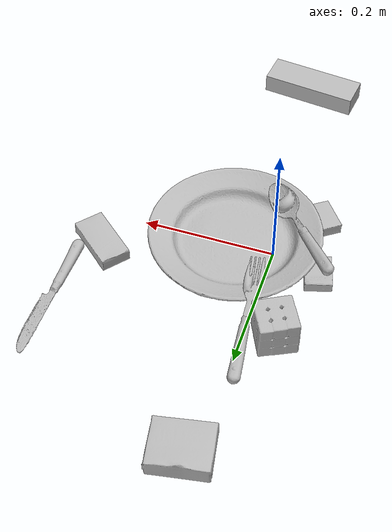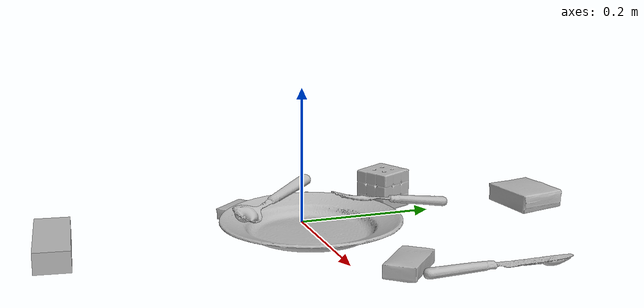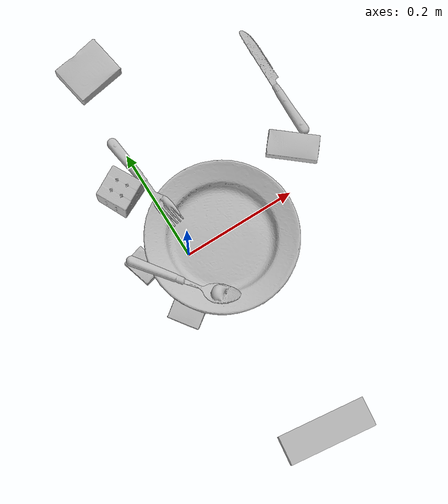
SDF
<sdf version="1.4">
  <world name="default">
    <light name="light1" type="point">
      <pose>0 0 1 0 0 0</pose>
      <diffuse>3 3 3 1</diffuse>
      <specular>3 3 3 1</specular>
    </light>
    <light name="light2" type="point">
      <pose>0 0.5 2 0 0 0</pose>
      <diffuse>1 1 1 1</diffuse>
      <specular>1 1 1 1</specular>
    </light>
    <light name="light3" type="point">
      <pose>0 0.5 2 0 0 0</pose>
      <diffuse>3 3 3 1</diffuse>
      <specular>3 3 3 1</specular>
    </light>
    <scene>
      <ambient>0.7 0.7 0.7</ambient>
    </scene>
    <model name="box11">
      <link name="link_box11">
        <collision name="default">
          <geometry>
            <mesh>
              <uri>model://pudding_box/collision_meshes/collision.obj</uri>
              <scale>0.5 0.5 0.5</scale>
            </mesh>
          </geometry>
          <surface>
            <friction>
              <ode>
                <mu>0.5</mu>
                <mu2>0.5</mu2>
              </ode>
            </friction>
          <contact>
        <ode>
            <max_vel>0</max_vel>
            <min_depth>0.0001</min_depth>
            <kp>1e8</kp>
        </ode>
    </contact></surface>
        </collision>
        <visual name="default">
          <geometry>
            <mesh>
              <uri>model://pudding_box/visual_meshes/visual.dae</uri>
              <scale>0.5 0.5 0.5</scale>
            </mesh>
          </geometry>
        </visual>
        <inertial>
          <mass>0.03786866366863251</mass>
          <pose>0.00024474109522998333 0.00040339428232982755 -0.0002594413817860186 0.005213102272185547 -0.006603797326323335 0.020079825161634604</pose>
          <inertia>
            <ixx>1.0702144e-05</ixx>
            <iyy>7.2004777e-06</iyy>
            <izz>1.580451e-05</izz>
            <ixy>0</ixy>
            <ixz>0</ixz>
            <iyz>0</iyz>
          </inertia>
        </inertial>
      </link>
      <pose>-0.051698893308639526 -0.08091425150632858 0.00986290443688631 0.022348776902968187 -0.011391515336631138 0.6364617600883297</pose>
    </model>
    <model name="box12">
      <link name="link_box12">
        <collision name="default">
          <geometry>
            <mesh>
              <uri>model://gelatin_box/collision_meshes/collision.obj</uri>
              <scale>1.0 1.0 1.0</scale>
            </mesh>
          </geometry>
          <surface>
            <friction>
              <ode>
                <mu>0.5</mu>
                <mu2>0.5</mu2>
              </ode>
            </friction>
          <contact>
        <ode>
            <max_vel>0</max_vel>
            <min_depth>0.0001</min_depth>
            <kp>1e8</kp>
        </ode>
    </contact></surface>
        </collision>
        <visual name="default">
          <geometry>
            <mesh>
              <uri>model://gelatin_box/visual_meshes/visual.dae</uri>
              <scale>1.0 1.0 1.0</scale>
            </mesh>
          </geometry>
        </visual>
        <inertial>
          <mass>0.12588495016098022</mass>
          <pose>0.0004319618456065655 0.00011156871914863586 -0.0003640321083366871 -0.0010503723379331838 -0.004755819617810625 0.016440561335826234</pose>
          <inertia>
            <ixx>8.886451e-05</ixx>
            <iyy>6.3475454e-05</iyy>
            <izz>0.00013527159</izz>
            <ixy>0</ixy>
            <ixz>0</ixz>
            <iyz>0</iyz>
          </inertia>
        </inertial>
      </link>
      <pose>0.02062504179775715 0.3567647337913513 0.015168310143053532 0.005596546198799147 -0.007303593435218317 1.739368775423702</pose>
    </model>
    <model name="box13">
      <link name="link_box13">
        <collision name="default">
          <geometry>
            <mesh>
              <uri>model://rubiks_cube/collision_meshes/collision.obj</uri>
              <scale>1.0 1.0 1.0</scale>
            </mesh>
          </geometry>
          <surface>
            <friction>
              <ode>
                <mu>0.5</mu>
                <mu2>0.5</mu2>
              </ode>
            </friction>
          <contact>
        <ode>
            <max_vel>0</max_vel>
            <min_depth>0.0001</min_depth>
            <kp>1e8</kp>
        </ode>
    </contact></surface>
        </collision>
        <visual name="default">
          <geometry>
            <mesh>
              <uri>model://rubiks_cube/visual_meshes/visual.dae</uri>
              <scale>1.0 1.0 1.0</scale>
            </mesh>
          </geometry>
        </visual>
        <inertial>
          <mass>0.24923686683177948</mass>
          <pose>2.6721039830590598e-05 5.256966323941015e-05 -7.264316082000732e-06 -0.05467307197132049 -0.09814178001312306 -0.03445579173896148</pose>
          <inertia>
            <ixx>0.00013772011</ixx>
            <iyy>0.00013707785</iyy>
            <izz>0.00013886133</izz>
            <ixy>0</ixy>
            <ixz>0</ixz>
            <iyz>0</iyz>
          </inertia>
        </inertial>
      </link>
      <pose>-0.04301220923662186 0.14561861753463745 0.02867901511490345 3.7463535882027734e-08 1.9404382956893923e-08 0.48807508770060387</pose>
    </model>
    <model name="box21">
      <link name="link_box21">
        <collision name="default">
          <geometry>
            <mesh>
              <uri>model://cracker_box/collision_meshes/collision.obj</uri>
              <scale>0.25 0.25 0.25</scale>
            </mesh>
          </geometry>
          <surface>
            <friction>
              <ode>
                <mu>0.5</mu>
                <mu2>0.5</mu2>
              </ode>
            </friction>
          <contact>
        <ode>
            <max_vel>0</max_vel>
            <min_depth>0.0001</min_depth>
            <kp>1e8</kp>
        </ode>
    </contact></surface>
        </collision>
        <visual name="default">
          <geometry>
            <mesh>
              <uri>model://cracker_box/visual_meshes/visual.dae</uri>
              <scale>0.25 0.25 0.25</scale>
            </mesh>
          </geometry>
        </visual>
        <inertial>
          <mass>0.030397580936551094</mass>
          <pose>0.00023660376609768718 6.358562677633017e-05 -0.0004257384280208498 -0.0003162076301819785 -0.011106490531717715 0.002546795235004545</pose>
          <inertia>
            <ixx>4.8323677e-06</ixx>
            <iyy>7.979188e-06</iyy>
            <izz>1.1387034e-05</izz>
            <ixy>0</ixy>
            <ixz>0</ixz>
            <iyz>0</iyz>
          </inertia>
        </inertial>
      </link>
      <pose>-0.07323606312274933 0.02192160300910473 0.009096027351915836 -0.014050599537467762 -0.005016605710008572 -1.2989244031614116</pose>
    </model>
    <model name="box22">
      <link name="link_box22">
        <collision name="default">
          <geometry>
            <mesh>
              <uri>model://jenga/collision_meshes/collision.obj</uri>
              <scale>1.0 1.0 1.0</scale>
            </mesh>
          </geometry>
          <surface>
            <friction>
              <ode>
                <mu>0.5</mu>
                <mu2>0.5</mu2>
              </ode>
            </friction>
          <contact>
        <ode>
            <max_vel>0</max_vel>
            <min_depth>0.0001</min_depth>
            <kp>1e8</kp>
        </ode>
    </contact></surface>
        </collision>
        <visual name="default">
          <geometry>
            <mesh>
              <uri>model://jenga/visual_meshes/visual.dae</uri>
              <scale>1.0 1.0 1.0</scale>
            </mesh>
          </geometry>
        </visual>
        <inertial>
          <mass>0.22754427790641785</mass>
          <pose>-2.502855807051674e-07 -0.00010250010382151231 -4.0923401684267446e-05 0.0 -7.34215461761844e-07 0.0</pose>
          <inertia>
            <ixx>6.2967025e-05</ixx>
            <iyy>0.00042666285</iyy>
            <izz>0.00045549884</izz>
            <ixy>0</ixy>
            <ixz>0</ixz>
            <iyz>0</iyz>
          </inertia>
        </inertial>
      </link>
      <pose>0.03465726599097252 -0.36475223302841187 0.014999999664723873 1.1035798548343266e-08 3.923069502390247e-09 -0.11871196105298291</pose>
    </model>
    <model name="box23">
      <link name="link_box23">
        <collision name="default">
          <geometry>
            <mesh>
              <uri>model://sugar_box/collision_meshes/collision.obj</uri>
              <scale>0.5 0.5 0.5</scale>
            </mesh>
          </geometry>
          <surface>
            <friction>
              <ode>
                <mu>0.5</mu>
                <mu2>0.5</mu2>
              </ode>
            </friction>
          <contact>
        <ode>
            <max_vel>0</max_vel>
            <min_depth>0.0001</min_depth>
            <kp>1e8</kp>
        </ode>
    </contact></surface>
        </collision>
        <visual name="default">
          <geometry>
            <mesh>
              <uri>model://sugar_box/visual_meshes/visual.dae</uri>
              <scale>0.5 0.5 0.5</scale>
            </mesh>
          </geometry>
        </visual>
        <inertial>
          <mass>0.07313712686300278</mass>
          <pose>0.0005171863595023751 1.924554817378521e-05 -0.00018182402709499002 -0.0004046264167799433 0.0010506636386831275 0.0026153785560066108</pose>
          <inertia>
            <ixx>1.5234412e-05</ixx>
            <iyy>4.924075e-05</iyy>
            <izz>5.894705e-05</izz>
            <ixy>0</ixy>
            <ixz>0</ixz>
            <iyz>0</iyz>
          </inertia>
        </inertial>
      </link>
      <pose>0.24573610723018646 0.06365950405597687 0.011399302631616592 0.0007770569942842703 -0.02343360366755749 -0.7019657342917375</pose>
    </model>
    <model name="plate1">
      <link name="link_plate1">
        <collision name="default">
          <geometry>
            <mesh>
              <uri>model://plate/collision_meshes/collision.obj</uri>
              <scale>1.0 1.0 1.0</scale>
            </mesh>
          </geometry>
          <surface>
            <friction>
              <ode>
                <mu>0.5</mu>
                <mu2>0.5</mu2>
              </ode>
            </friction>
          <contact>
        <ode>
            <max_vel>0</max_vel>
            <min_depth>0.0001</min_depth>
            <kp>1e8</kp>
        </ode>
    </contact></surface>
        </collision>
        <visual name="default">
          <geometry>
            <mesh>
              <uri>model://plate/visual_meshes/visual.dae</uri>
              <scale>1.0 1.0 1.0</scale>
            </mesh>
          </geometry>
        </visual>
        <inertial>
          <mass>0.2069685012102127</mass>
          <pose>-0.0006044612964615226 0.0002782598603516817 -0.0010561986127868295 0.0022188143427174073 -0.003225461822968263 0.4526007532235607</pose>
          <inertia>
            <ixx>0.0009682027</ixx>
            <iyy>0.0009589421</iyy>
            <izz>0.0018936595</izz>
            <ixy>0</ixy>
            <ixz>0</ixz>
            <iyz>0</iyz>
          </inertia>
        </inertial>
      </link>
      <pose>0.060655925422906876 -0.006682401057332754 0.013733000494539738 -5.329707260796231e-09 3.409841430800048e-08 0.0562462156528044</pose>
    </model>
    <model name="silverware1">
      <link name="link_silverware1">
        <collision name="default">
          <geometry>
            <mesh>
              <uri>model://knife/collision_meshes/collision.obj</uri>
              <scale>1.0 1.0 1.0</scale>
            </mesh>
          </geometry>
          <surface>
            <friction>
              <ode>
                <mu>0.5</mu>
                <mu2>0.5</mu2>
              </ode>
            </friction>
          <contact>
        <ode>
            <max_vel>0</max_vel>
            <min_depth>0.0001</min_depth>
            <kp>1e8</kp>
        </ode>
    </contact></surface>
        </collision>
        <visual name="default">
          <geometry>
            <mesh>
              <uri>model://knife/visual_meshes/visual.dae</uri>
              <scale>1.0 1.0 1.0</scale>
            </mesh>
          </geometry>
        </visual>
        <inertial>
          <mass>0.01404397189617157</mass>
          <pose>-0.02378525771200657 0.0015275126788765192 5.0620223191799596e-05 0.07306830572090188 0.017248424252748085 -0.00740981553779352</pose>
          <inertia>
            <ixx>3.9862488e-07</ixx>
            <iyy>5.3954667e-05</iyy>
            <izz>5.408303e-05</izz>
            <ixy>0</ixy>
            <ixz>0</ixz>
            <iyz>0</iyz>
          </inertia>
        </inertial>
      </link>
      <pose>0.28123003244400024 0.177229642868042 0.007946724072098732 -0.0186328221222836 -0.014515286023980828 1.5505756373189286</pose>
    </model>
    <model name="silverware2">
      <link name="link_silverware2">
        <collision name="default">
          <geometry>
            <mesh>
              <uri>model://fork/collision_meshes/collision.obj</uri>
              <scale>1.0 1.0 1.0</scale>
            </mesh>
          </geometry>
          <surface>
            <friction>
              <ode>
                <mu>0.5</mu>
                <mu2>0.5</mu2>
              </ode>
            </friction>
          <contact>
        <ode>
            <max_vel>0</max_vel>
            <min_depth>0.0001</min_depth>
            <kp>1e8</kp>
        </ode>
    </contact></surface>
        </collision>
        <visual name="default">
          <geometry>
            <mesh>
              <uri>model://fork/visual_meshes/visual.dae</uri>
              <scale>1.0 1.0 1.0</scale>
            </mesh>
          </geometry>
        </visual>
        <inertial>
          <mass>0.012992284260690212</mass>
          <pose>-0.029570037499070168 0.0004658822435885668 0.00032188609475269914 -0.013552170713958372 -0.010977837352032947 0.014453895109592321</pose>
          <inertia>
            <ixx>4.5545306e-07</ixx>
            <iyy>3.3919117e-05</iyy>
            <izz>3.4122822e-05</izz>
            <ixy>0</ixy>
            <ixz>0</ixz>
            <iyz>0</iyz>
          </inertia>
        </inertial>
      </link>
      <pose>-0.00027998629957437515 0.14183148741722107 0.021955404430627823 0.07105168331818672 -0.15534206537500242 -1.4595035211357594</pose>
    </model>
    <model name="silverware3">
      <link name="link_silverware3">
        <collision name="default">
          <geometry>
            <mesh>
              <uri>model://spoon/collision_meshes/collision.obj</uri>
              <scale>1.0 1.0 1.0</scale>
            </mesh>
          </geometry>
          <surface>
            <friction>
              <ode>
                <mu>0.5</mu>
                <mu2>0.5</mu2>
              </ode>
            </friction>
          <contact>
        <ode>
            <max_vel>0</max_vel>
            <min_depth>0.0001</min_depth>
            <kp>1e8</kp>
        </ode>
    </contact></surface>
        </collision>
        <visual name="default">
          <geometry>
            <mesh>
              <uri>model://spoon/visual_meshes/visual.dae</uri>
              <scale>1.0 1.0 1.0</scale>
            </mesh>
          </geometry>
        </visual>
        <inertial>
          <mass>0.01562128309160471</mass>
          <pose>-0.0055263228714466095 -0.0016034174477681518 -0.0007271653157658875 0.03521671072610287 -0.03906584128735088 0.006150609582760137</pose>
          <inertia>
            <ixx>8.688809e-07</ixx>
            <iyy>5.9438455e-05</iyy>
            <izz>5.986695e-05</izz>
            <ixy>0</ixy>
            <ixz>0</ixz>
            <iyz>0</iyz>
          </inertia>
        </inertial>
      </link>
      <pose>-0.03084794618189335 -0.03452616184949875 0.02895485982298851 -0.5185933274570379 0.12214323604605039 -0.9086605279367871</pose>
    </model>
  <physics type="ode">
      <max_contacts>50</max_contacts>
      <ode>
        <solver>
          <type>quick</type>
          <iters>75</iters>
        </solver>
        <constraints>
          <contact_max_correcting_vel>0</contact_max_correcting_vel>
          <contact_surface_layer>0</contact_surface_layer>
        </constraints>
      </ode>
    </physics></world>
</sdf>
